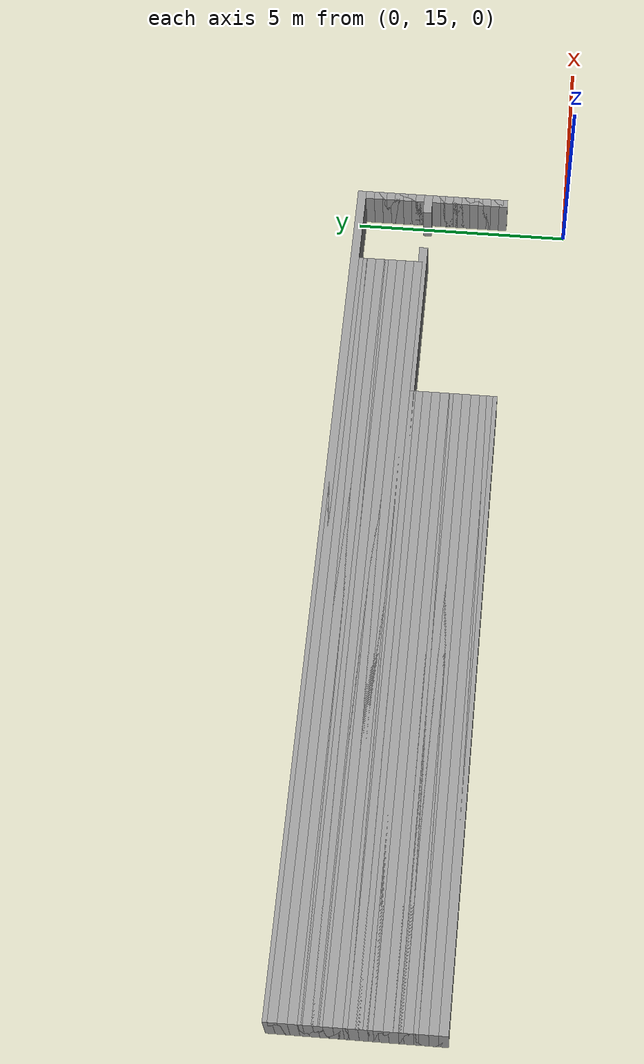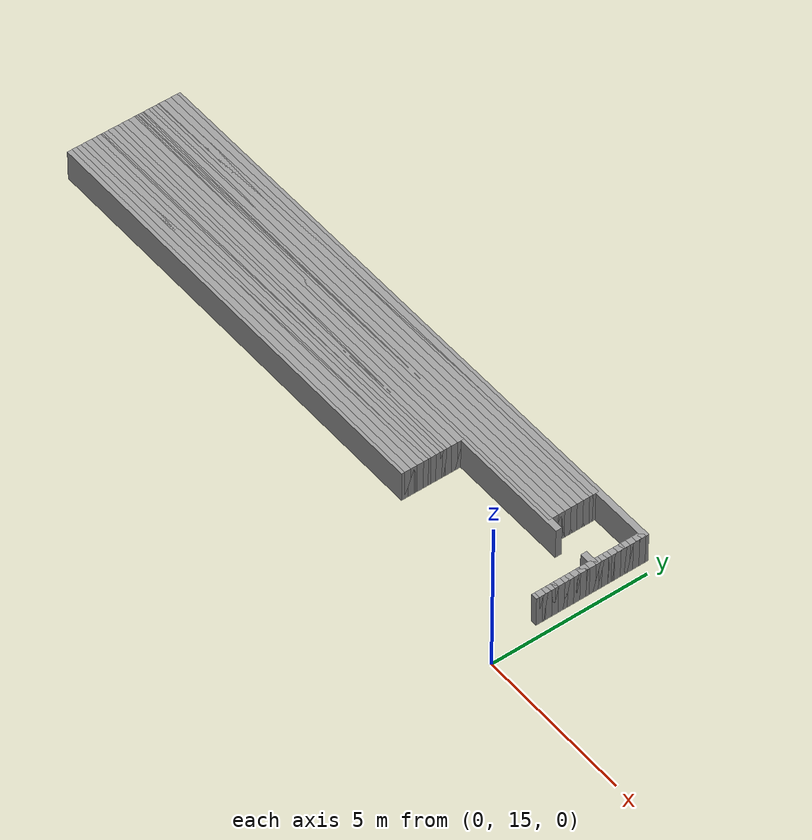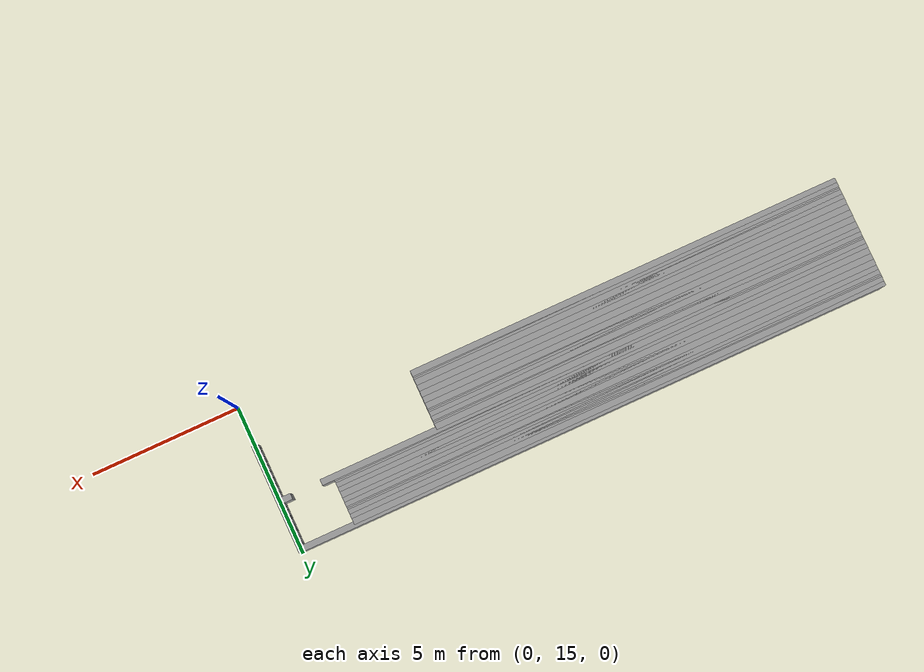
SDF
<sdf version="1.6">
 <world name="GridMap">
  <model name="GridMap">
   <link name="Wall_(126.5,164.0)">
    <collision name="Wall_(126.5,164.0)_Collision">
     <geometry><box><size>14.5 0.2 1.0</size></box></geometry>
     <pose>-12.65 16.4 0.5 0 -0 0</pose>
    </collision>
    <visual name="Wall_(126.5,164.0)_Visual">
     <geometry><box><size>14.5 0.2 1.0</size></box></geometry>
     <pose>-12.65 16.4 0.5 0 -0 0</pose>
     <material>
      <script><uri>file://media/materials/scripts/gazebo.material</uri><name>Gazebo/Grey</name></script>
      <ambient>1 1 1 1</ambient>
     </material>
     <meta><layer>0</layer></meta>
    </visual>
    <pose>0 0 0.5 0 -0 0</pose>
   </link>
   <link name="Wall_(1.0,165.0)">
    <collision name="Wall_(1.0,165.0)_Collision">
     <geometry><box><size>0.2 0.2 1.0</size></box></geometry>
     <pose>-0.1 16.5 0.5 0 -0 0</pose>
    </collision>
    <visual name="Wall_(1.0,165.0)_Visual">
     <geometry><box><size>0.2 0.2 1.0</size></box></geometry>
     <pose>-0.1 16.5 0.5 0 -0 0</pose>
     <material>
      <script><uri>file://media/materials/scripts/gazebo.material</uri><name>Gazebo/Grey</name></script>
      <ambient>1 1 1 1</ambient>
     </material>
     <meta><layer>0</layer></meta>
    </visual>
    <pose>0 0 0.5 0 -0 0</pose>
   </link>
   <link name="Wall_(126.5,165.0)">
    <collision name="Wall_(126.5,165.0)_Collision">
     <geometry><box><size>14.5 0.2 1.0</size></box></geometry>
     <pose>-12.65 16.5 0.5 0 -0 0</pose>
    </collision>
    <visual name="Wall_(126.5,165.0)_Visual">
     <geometry><box><size>14.5 0.2 1.0</size></box></geometry>
     <pose>-12.65 16.5 0.5 0 -0 0</pose>
     <material>
      <script><uri>file://media/materials/scripts/gazebo.material</uri><name>Gazebo/Grey</name></script>
      <ambient>1 1 1 1</ambient>
     </material>
     <meta><layer>0</layer></meta>
    </visual>
    <pose>0 0 0.5 0 -0 0</pose>
   </link>
   <link name="Wall_(1.0,166.0)">
    <collision name="Wall_(1.0,166.0)_Collision">
     <geometry><box><size>0.2 0.2 1.0</size></box></geometry>
     <pose>-0.1 16.6 0.5 0 -0 0</pose>
    </collision>
    <visual name="Wall_(1.0,166.0)_Visual">
     <geometry><box><size>0.2 0.2 1.0</size></box></geometry>
     <pose>-0.1 16.6 0.5 0 -0 0</pose>
     <material>
      <script><uri>file://media/materials/scripts/gazebo.material</uri><name>Gazebo/Grey</name></script>
      <ambient>1 1 1 1</ambient>
     </material>
     <meta><layer>0</layer></meta>
    </visual>
    <pose>0 0 0.5 0 -0 0</pose>
   </link>
   <link name="Wall_(126.5,166.0)">
    <collision name="Wall_(126.5,166.0)_Collision">
     <geometry><box><size>14.5 0.2 1.0</size></box></geometry>
     <pose>-12.65 16.6 0.5 0 -0 0</pose>
    </collision>
    <visual name="Wall_(126.5,166.0)_Visual">
     <geometry><box><size>14.5 0.2 1.0</size></box></geometry>
     <pose>-12.65 16.6 0.5 0 -0 0</pose>
     <material>
      <script><uri>file://media/materials/scripts/gazebo.material</uri><name>Gazebo/Grey</name></script>
      <ambient>1 1 1 1</ambient>
     </material>
     <meta><layer>0</layer></meta>
    </visual>
    <pose>0 0 0.5 0 -0 0</pose>
   </link>
   <link name="Wall_(1.0,167.0)">
    <collision name="Wall_(1.0,167.0)_Collision">
     <geometry><box><size>0.2 0.2 1.0</size></box></geometry>
     <pose>-0.1 16.7 0.5 0 -0 0</pose>
    </collision>
    <visual name="Wall_(1.0,167.0)_Visual">
     <geometry><box><size>0.2 0.2 1.0</size></box></geometry>
     <pose>-0.1 16.7 0.5 0 -0 0</pose>
     <material>
      <script><uri>file://media/materials/scripts/gazebo.material</uri><name>Gazebo/Grey</name></script>
      <ambient>1 1 1 1</ambient>
     </material>
     <meta><layer>0</layer></meta>
    </visual>
    <pose>0 0 0.5 0 -0 0</pose>
   </link>
   <link name="Wall_(126.5,167.0)">
    <collision name="Wall_(126.5,167.0)_Collision">
     <geometry><box><size>14.5 0.2 1.0</size></box></geometry>
     <pose>-12.65 16.7 0.5 0 -0 0</pose>
    </collision>
    <visual name="Wall_(126.5,167.0)_Visual">
     <geometry><box><size>14.5 0.2 1.0</size></box></geometry>
     <pose>-12.65 16.7 0.5 0 -0 0</pose>
     <material>
      <script><uri>file://media/materials/scripts/gazebo.material</uri><name>Gazebo/Grey</name></script>
      <ambient>1 1 1 1</ambient>
     </material>
     <meta><layer>0</layer></meta>
    </visual>
    <pose>0 0 0.5 0 -0 0</pose>
   </link>
   <link name="Wall_(1.0,168.0)">
    <collision name="Wall_(1.0,168.0)_Collision">
     <geometry><box><size>0.2 0.2 1.0</size></box></geometry>
     <pose>-0.1 16.8 0.5 0 -0 0</pose>
    </collision>
    <visual name="Wall_(1.0,168.0)_Visual">
     <geometry><box><size>0.2 0.2 1.0</size></box></geometry>
     <pose>-0.1 16.8 0.5 0 -0 0</pose>
     <material>
      <script><uri>file://media/materials/scripts/gazebo.material</uri><name>Gazebo/Grey</name></script>
      <ambient>1 1 1 1</ambient>
     </material>
     <meta><layer>0</layer></meta>
    </visual>
    <pose>0 0 0.5 0 -0 0</pose>
   </link>
   <link name="Wall_(126.5,168.0)">
    <collision name="Wall_(126.5,168.0)_Collision">
     <geometry><box><size>14.5 0.2 1.0</size></box></geometry>
     <pose>-12.65 16.8 0.5 0 -0 0</pose>
    </collision>
    <visual name="Wall_(126.5,168.0)_Visual">
     <geometry><box><size>14.5 0.2 1.0</size></box></geometry>
     <pose>-12.65 16.8 0.5 0 -0 0</pose>
     <material>
      <script><uri>file://media/materials/scripts/gazebo.material</uri><name>Gazebo/Grey</name></script>
      <ambient>1 1 1 1</ambient>
     </material>
     <meta><layer>0</layer></meta>
    </visual>
    <pose>0 0 0.5 0 -0 0</pose>
   </link>
   <link name="Wall_(1.0,169.0)">
    <collision name="Wall_(1.0,169.0)_Collision">
     <geometry><box><size>0.2 0.2 1.0</size></box></geometry>
     <pose>-0.1 16.9 0.5 0 -0 0</pose>
    </collision>
    <visual name="Wall_(1.0,169.0)_Visual">
     <geometry><box><size>0.2 0.2 1.0</size></box></geometry>
     <pose>-0.1 16.9 0.5 0 -0 0</pose>
     <material>
      <script><uri>file://media/materials/scripts/gazebo.material</uri><name>Gazebo/Grey</name></script>
      <ambient>1 1 1 1</ambient>
     </material>
     <meta><layer>0</layer></meta>
    </visual>
    <pose>0 0 0.5 0 -0 0</pose>
   </link>
   <link name="Wall_(126.5,169.0)">
    <collision name="Wall_(126.5,169.0)_Collision">
     <geometry><box><size>14.5 0.2 1.0</size></box></geometry>
     <pose>-12.65 16.9 0.5 0 -0 0</pose>
    </collision>
    <visual name="Wall_(126.5,169.0)_Visual">
     <geometry><box><size>14.5 0.2 1.0</size></box></geometry>
     <pose>-12.65 16.9 0.5 0 -0 0</pose>
     <material>
      <script><uri>file://media/materials/scripts/gazebo.material</uri><name>Gazebo/Grey</name></script>
      <ambient>1 1 1 1</ambient>
     </material>
     <meta><layer>0</layer></meta>
    </visual>
    <pose>0 0 0.5 0 -0 0</pose>
   </link>
   <link name="Wall_(1.0,170.0)">
    <collision name="Wall_(1.0,170.0)_Collision">
     <geometry><box><size>0.2 0.2 1.0</size></box></geometry>
     <pose>-0.1 17.0 0.5 0 -0 0</pose>
    </collision>
    <visual name="Wall_(1.0,170.0)_Visual">
     <geometry><box><size>0.2 0.2 1.0</size></box></geometry>
     <pose>-0.1 17.0 0.5 0 -0 0</pose>
     <material>
      <script><uri>file://media/materials/scripts/gazebo.material</uri><name>Gazebo/Grey</name></script>
      <ambient>1 1 1 1</ambient>
     </material>
     <meta><layer>0</layer></meta>
    </visual>
    <pose>0 0 0.5 0 -0 0</pose>
   </link>
   <link name="Wall_(126.5,170.0)">
    <collision name="Wall_(126.5,170.0)_Collision">
     <geometry><box><size>14.5 0.2 1.0</size></box></geometry>
     <pose>-12.65 17.0 0.5 0 -0 0</pose>
    </collision>
    <visual name="Wall_(126.5,170.0)_Visual">
     <geometry><box><size>14.5 0.2 1.0</size></box></geometry>
     <pose>-12.65 17.0 0.5 0 -0 0</pose>
     <material>
      <script><uri>file://media/materials/scripts/gazebo.material</uri><name>Gazebo/Grey</name></script>
      <ambient>1 1 1 1</ambient>
     </material>
     <meta><layer>0</layer></meta>
    </visual>
    <pose>0 0 0.5 0 -0 0</pose>
   </link>
   <link name="Wall_(1.0,171.0)">
    <collision name="Wall_(1.0,171.0)_Collision">
     <geometry><box><size>0.2 0.2 1.0</size></box></geometry>
     <pose>-0.1 17.1 0.5 0 -0 0</pose>
    </collision>
    <visual name="Wall_(1.0,171.0)_Visual">
     <geometry><box><size>0.2 0.2 1.0</size></box></geometry>
     <pose>-0.1 17.1 0.5 0 -0 0</pose>
     <material>
      <script><uri>file://media/materials/scripts/gazebo.material</uri><name>Gazebo/Grey</name></script>
      <ambient>1 1 1 1</ambient>
     </material>
     <meta><layer>0</layer></meta>
    </visual>
    <pose>0 0 0.5 0 -0 0</pose>
   </link>
   <link name="Wall_(126.5,171.0)">
    <collision name="Wall_(126.5,171.0)_Collision">
     <geometry><box><size>14.5 0.2 1.0</size></box></geometry>
     <pose>-12.65 17.1 0.5 0 -0 0</pose>
    </collision>
    <visual name="Wall_(126.5,171.0)_Visual">
     <geometry><box><size>14.5 0.2 1.0</size></box></geometry>
     <pose>-12.65 17.1 0.5 0 -0 0</pose>
     <material>
      <script><uri>file://media/materials/scripts/gazebo.material</uri><name>Gazebo/Grey</name></script>
      <ambient>1 1 1 1</ambient>
     </material>
     <meta><layer>0</layer></meta>
    </visual>
    <pose>0 0 0.5 0 -0 0</pose>
   </link>
   <link name="Wall_(1.0,172.0)">
    <collision name="Wall_(1.0,172.0)_Collision">
     <geometry><box><size>0.2 0.2 1.0</size></box></geometry>
     <pose>-0.1 17.2 0.5 0 -0 0</pose>
    </collision>
    <visual name="Wall_(1.0,172.0)_Visual">
     <geometry><box><size>0.2 0.2 1.0</size></box></geometry>
     <pose>-0.1 17.2 0.5 0 -0 0</pose>
     <material>
      <script><uri>file://media/materials/scripts/gazebo.material</uri><name>Gazebo/Grey</name></script>
      <ambient>1 1 1 1</ambient>
     </material>
     <meta><layer>0</layer></meta>
    </visual>
    <pose>0 0 0.5 0 -0 0</pose>
   </link>
   <link name="Wall_(126.5,172.0)">
    <collision name="Wall_(126.5,172.0)_Collision">
     <geometry><box><size>14.5 0.2 1.0</size></box></geometry>
     <pose>-12.65 17.2 0.5 0 -0 0</pose>
    </collision>
    <visual name="Wall_(126.5,172.0)_Visual">
     <geometry><box><size>14.5 0.2 1.0</size></box></geometry>
     <pose>-12.65 17.2 0.5 0 -0 0</pose>
     <material>
      <script><uri>file://media/materials/scripts/gazebo.material</uri><name>Gazebo/Grey</name></script>
      <ambient>1 1 1 1</ambient>
     </material>
     <meta><layer>0</layer></meta>
    </visual>
    <pose>0 0 0.5 0 -0 0</pose>
   </link>
   <link name="Wall_(1.0,173.0)">
    <collision name="Wall_(1.0,173.0)_Collision">
     <geometry><box><size>0.2 0.2 1.0</size></box></geometry>
     <pose>-0.1 17.3 0.5 0 -0 0</pose>
    </collision>
    <visual name="Wall_(1.0,173.0)_Visual">
     <geometry><box><size>0.2 0.2 1.0</size></box></geometry>
     <pose>-0.1 17.3 0.5 0 -0 0</pose>
     <material>
      <script><uri>file://media/materials/scripts/gazebo.material</uri><name>Gazebo/Grey</name></script>
      <ambient>1 1 1 1</ambient>
     </material>
     <meta><layer>0</layer></meta>
    </visual>
    <pose>0 0 0.5 0 -0 0</pose>
   </link>
   <link name="Wall_(126.5,173.0)">
    <collision name="Wall_(126.5,173.0)_Collision">
     <geometry><box><size>14.5 0.2 1.0</size></box></geometry>
     <pose>-12.65 17.3 0.5 0 -0 0</pose>
    </collision>
    <visual name="Wall_(126.5,173.0)_Visual">
     <geometry><box><size>14.5 0.2 1.0</size></box></geometry>
     <pose>-12.65 17.3 0.5 0 -0 0</pose>
     <material>
      <script><uri>file://media/materials/scripts/gazebo.material</uri><name>Gazebo/Grey</name></script>
      <ambient>1 1 1 1</ambient>
     </material>
     <meta><layer>0</layer></meta>
    </visual>
    <pose>0 0 0.5 0 -0 0</pose>
   </link>
   <link name="Wall_(1.0,174.0)">
    <collision name="Wall_(1.0,174.0)_Collision">
     <geometry><box><size>0.2 0.2 1.0</size></box></geometry>
     <pose>-0.1 17.4 0.5 0 -0 0</pose>
    </collision>
    <visual name="Wall_(1.0,174.0)_Visual">
     <geometry><box><size>0.2 0.2 1.0</size></box></geometry>
     <pose>-0.1 17.4 0.5 0 -0 0</pose>
     <material>
      <script><uri>file://media/materials/scripts/gazebo.material</uri><name>Gazebo/Grey</name></script>
      <ambient>1 1 1 1</ambient>
     </material>
     <meta><layer>0</layer></meta>
    </visual>
    <pose>0 0 0.5 0 -0 0</pose>
   </link>
   <link name="Wall_(126.5,174.0)">
    <collision name="Wall_(126.5,174.0)_Collision">
     <geometry><box><size>14.5 0.2 1.0</size></box></geometry>
     <pose>-12.65 17.4 0.5 0 -0 0</pose>
    </collision>
    <visual name="Wall_(126.5,174.0)_Visual">
     <geometry><box><size>14.5 0.2 1.0</size></box></geometry>
     <pose>-12.65 17.4 0.5 0 -0 0</pose>
     <material>
      <script><uri>file://media/materials/scripts/gazebo.material</uri><name>Gazebo/Grey</name></script>
      <ambient>1 1 1 1</ambient>
     </material>
     <meta><layer>0</layer></meta>
    </visual>
    <pose>0 0 0.5 0 -0 0</pose>
   </link>
   <link name="Wall_(1.0,175.0)">
    <collision name="Wall_(1.0,175.0)_Collision">
     <geometry><box><size>0.2 0.2 1.0</size></box></geometry>
     <pose>-0.1 17.5 0.5 0 -0 0</pose>
    </collision>
    <visual name="Wall_(1.0,175.0)_Visual">
     <geometry><box><size>0.2 0.2 1.0</size></box></geometry>
     <pose>-0.1 17.5 0.5 0 -0 0</pose>
     <material>
      <script><uri>file://media/materials/scripts/gazebo.material</uri><name>Gazebo/Grey</name></script>
      <ambient>1 1 1 1</ambient>
     </material>
     <meta><layer>0</layer></meta>
    </visual>
    <pose>0 0 0.5 0 -0 0</pose>
   </link>
   <link name="Wall_(126.5,175.0)">
    <collision name="Wall_(126.5,175.0)_Collision">
     <geometry><box><size>14.5 0.2 1.0</size></box></geometry>
     <pose>-12.65 17.5 0.5 0 -0 0</pose>
    </collision>
    <visual name="Wall_(126.5,175.0)_Visual">
     <geometry><box><size>14.5 0.2 1.0</size></box></geometry>
     <pose>-12.65 17.5 0.5 0 -0 0</pose>
     <material>
      <script><uri>file://media/materials/scripts/gazebo.material</uri><name>Gazebo/Grey</name></script>
      <ambient>1 1 1 1</ambient>
     </material>
     <meta><layer>0</layer></meta>
    </visual>
    <pose>0 0 0.5 0 -0 0</pose>
   </link>
   <link name="Wall_(1.0,176.0)">
    <collision name="Wall_(1.0,176.0)_Collision">
     <geometry><box><size>0.2 0.2 1.0</size></box></geometry>
     <pose>-0.1 17.6 0.5 0 -0 0</pose>
    </collision>
    <visual name="Wall_(1.0,176.0)_Visual">
     <geometry><box><size>0.2 0.2 1.0</size></box></geometry>
     <pose>-0.1 17.6 0.5 0 -0 0</pose>
     <material>
      <script><uri>file://media/materials/scripts/gazebo.material</uri><name>Gazebo/Grey</name></script>
      <ambient>1 1 1 1</ambient>
     </material>
     <meta><layer>0</layer></meta>
    </visual>
    <pose>0 0 0.5 0 -0 0</pose>
   </link>
   <link name="Wall_(126.5,176.0)">
    <collision name="Wall_(126.5,176.0)_Collision">
     <geometry><box><size>14.5 0.2 1.0</size></box></geometry>
     <pose>-12.65 17.6 0.5 0 -0 0</pose>
    </collision>
    <visual name="Wall_(126.5,176.0)_Visual">
     <geometry><box><size>14.5 0.2 1.0</size></box></geometry>
     <pose>-12.65 17.6 0.5 0 -0 0</pose>
     <material>
      <script><uri>file://media/materials/scripts/gazebo.material</uri><name>Gazebo/Grey</name></script>
      <ambient>1 1 1 1</ambient>
     </material>
     <meta><layer>0</layer></meta>
    </visual>
    <pose>0 0 0.5 0 -0 0</pose>
   </link>
   <link name="Wall_(1.0,177.0)">
    <collision name="Wall_(1.0,177.0)_Collision">
     <geometry><box><size>0.2 0.2 1.0</size></box></geometry>
     <pose>-0.1 17.7 0.5 0 -0 0</pose>
    </collision>
    <visual name="Wall_(1.0,177.0)_Visual">
     <geometry><box><size>0.2 0.2 1.0</size></box></geometry>
     <pose>-0.1 17.7 0.5 0 -0 0</pose>
     <material>
      <script><uri>file://media/materials/scripts/gazebo.material</uri><name>Gazebo/Grey</name></script>
      <ambient>1 1 1 1</ambient>
     </material>
     <meta><layer>0</layer></meta>
    </visual>
    <pose>0 0 0.5 0 -0 0</pose>
   </link>
   <link name="Wall_(126.5,177.0)">
    <collision name="Wall_(126.5,177.0)_Collision">
     <geometry><box><size>14.5 0.2 1.0</size></box></geometry>
     <pose>-12.65 17.7 0.5 0 -0 0</pose>
    </collision>
    <visual name="Wall_(126.5,177.0)_Visual">
     <geometry><box><size>14.5 0.2 1.0</size></box></geometry>
     <pose>-12.65 17.7 0.5 0 -0 0</pose>
     <material>
      <script><uri>file://media/materials/scripts/gazebo.material</uri><name>Gazebo/Grey</name></script>
      <ambient>1 1 1 1</ambient>
     </material>
     <meta><layer>0</layer></meta>
    </visual>
    <pose>0 0 0.5 0 -0 0</pose>
   </link>
   <link name="Wall_(1.0,178.0)">
    <collision name="Wall_(1.0,178.0)_Collision">
     <geometry><box><size>0.2 0.2 1.0</size></box></geometry>
     <pose>-0.1 17.8 0.5 0 -0 0</pose>
    </collision>
    <visual name="Wall_(1.0,178.0)_Visual">
     <geometry><box><size>0.2 0.2 1.0</size></box></geometry>
     <pose>-0.1 17.8 0.5 0 -0 0</pose>
     <material>
      <script><uri>file://media/materials/scripts/gazebo.material</uri><name>Gazebo/Grey</name></script>
      <ambient>1 1 1 1</ambient>
     </material>
     <meta><layer>0</layer></meta>
    </visual>
    <pose>0 0 0.5 0 -0 0</pose>
   </link>
   <link name="Wall_(126.5,178.0)">
    <collision name="Wall_(126.5,178.0)_Collision">
     <geometry><box><size>14.5 0.2 1.0</size></box></geometry>
     <pose>-12.65 17.8 0.5 0 -0 0</pose>
    </collision>
    <visual name="Wall_(126.5,178.0)_Visual">
     <geometry><box><size>14.5 0.2 1.0</size></box></geometry>
     <pose>-12.65 17.8 0.5 0 -0 0</pose>
     <material>
      <script><uri>file://media/materials/scripts/gazebo.material</uri><name>Gazebo/Grey</name></script>
      <ambient>1 1 1 1</ambient>
     </material>
     <meta><layer>0</layer></meta>
    </visual>
    <pose>0 0 0.5 0 -0 0</pose>
   </link>
   <link name="Wall_(1.0,179.0)">
    <collision name="Wall_(1.0,179.0)_Collision">
     <geometry><box><size>0.2 0.2 1.0</size></box></geometry>
     <pose>-0.1 17.9 0.5 0 -0 0</pose>
    </collision>
    <visual name="Wall_(1.0,179.0)_Visual">
     <geometry><box><size>0.2 0.2 1.0</size></box></geometry>
     <pose>-0.1 17.9 0.5 0 -0 0</pose>
     <material>
      <script><uri>file://media/materials/scripts/gazebo.material</uri><name>Gazebo/Grey</name></script>
      <ambient>1 1 1 1</ambient>
     </material>
     <meta><layer>0</layer></meta>
    </visual>
    <pose>0 0 0.5 0 -0 0</pose>
   </link>
   <link name="Wall_(126.5,179.0)">
    <collision name="Wall_(126.5,179.0)_Collision">
     <geometry><box><size>14.5 0.2 1.0</size></box></geometry>
     <pose>-12.65 17.9 0.5 0 -0 0</pose>
    </collision>
    <visual name="Wall_(126.5,179.0)_Visual">
     <geometry><box><size>14.5 0.2 1.0</size></box></geometry>
     <pose>-12.65 17.9 0.5 0 -0 0</pose>
     <material>
      <script><uri>file://media/materials/scripts/gazebo.material</uri><name>Gazebo/Grey</name></script>
      <ambient>1 1 1 1</ambient>
     </material>
     <meta><layer>0</layer></meta>
    </visual>
    <pose>0 0 0.5 0 -0 0</pose>
   </link>
   <link name="Wall_(1.0,180.0)">
    <collision name="Wall_(1.0,180.0)_Collision">
     <geometry><box><size>0.2 0.2 1.0</size></box></geometry>
     <pose>-0.1 18.0 0.5 0 -0 0</pose>
    </collision>
    <visual name="Wall_(1.0,180.0)_Visual">
     <geometry><box><size>0.2 0.2 1.0</size></box></geometry>
     <pose>-0.1 18.0 0.5 0 -0 0</pose>
     <material>
      <script><uri>file://media/materials/scripts/gazebo.material</uri><name>Gazebo/Grey</name></script>
      <ambient>1 1 1 1</ambient>
     </material>
     <meta><layer>0</layer></meta>
    </visual>
    <pose>0 0 0.5 0 -0 0</pose>
   </link>
   <link name="Wall_(126.5,180.0)">
    <collision name="Wall_(126.5,180.0)_Collision">
     <geometry><box><size>14.5 0.2 1.0</size></box></geometry>
     <pose>-12.65 18.0 0.5 0 -0 0</pose>
    </collision>
    <visual name="Wall_(126.5,180.0)_Visual">
     <geometry><box><size>14.5 0.2 1.0</size></box></geometry>
     <pose>-12.65 18.0 0.5 0 -0 0</pose>
     <material>
      <script><uri>file://media/materials/scripts/gazebo.material</uri><name>Gazebo/Grey</name></script>
      <ambient>1 1 1 1</ambient>
     </material>
     <meta><layer>0</layer></meta>
    </visual>
    <pose>0 0 0.5 0 -0 0</pose>
   </link>
   <link name="Wall_(1.0,181.0)">
    <collision name="Wall_(1.0,181.0)_Collision">
     <geometry><box><size>0.2 0.2 1.0</size></box></geometry>
     <pose>-0.1 18.1 0.5 0 -0 0</pose>
    </collision>
    <visual name="Wall_(1.0,181.0)_Visual">
     <geometry><box><size>0.2 0.2 1.0</size></box></geometry>
     <pose>-0.1 18.1 0.5 0 -0 0</pose>
     <material>
      <script><uri>file://media/materials/scripts/gazebo.material</uri><name>Gazebo/Grey</name></script>
      <ambient>1 1 1 1</ambient>
     </material>
     <meta><layer>0</layer></meta>
    </visual>
    <pose>0 0 0.5 0 -0 0</pose>
   </link>
   <link name="Wall_(126.5,181.0)">
    <collision name="Wall_(126.5,181.0)_Collision">
     <geometry><box><size>14.5 0.2 1.0</size></box></geometry>
     <pose>-12.65 18.1 0.5 0 -0 0</pose>
    </collision>
    <visual name="Wall_(126.5,181.0)_Visual">
     <geometry><box><size>14.5 0.2 1.0</size></box></geometry>
     <pose>-12.65 18.1 0.5 0 -0 0</pose>
     <material>
      <script><uri>file://media/materials/scripts/gazebo.material</uri><name>Gazebo/Grey</name></script>
      <ambient>1 1 1 1</ambient>
     </material>
     <meta><layer>0</layer></meta>
    </visual>
    <pose>0 0 0.5 0 -0 0</pose>
   </link>
   <link name="Wall_(1.0,182.0)">
    <collision name="Wall_(1.0,182.0)_Collision">
     <geometry><box><size>0.2 0.2 1.0</size></box></geometry>
     <pose>-0.1 18.2 0.5 0 -0 0</pose>
    </collision>
    <visual name="Wall_(1.0,182.0)_Visual">
     <geometry><box><size>0.2 0.2 1.0</size></box></geometry>
     <pose>-0.1 18.2 0.5 0 -0 0</pose>
     <material>
      <script><uri>file://media/materials/scripts/gazebo.material</uri><name>Gazebo/Grey</name></script>
      <ambient>1 1 1 1</ambient>
     </material>
     <meta><layer>0</layer></meta>
    </visual>
    <pose>0 0 0.5 0 -0 0</pose>
   </link>
   <link name="Wall_(126.5,182.0)">
    <collision name="Wall_(126.5,182.0)_Collision">
     <geometry><box><size>14.5 0.2 1.0</size></box></geometry>
     <pose>-12.65 18.2 0.5 0 -0 0</pose>
    </collision>
    <visual name="Wall_(126.5,182.0)_Visual">
     <geometry><box><size>14.5 0.2 1.0</size></box></geometry>
     <pose>-12.65 18.2 0.5 0 -0 0</pose>
     <material>
      <script><uri>file://media/materials/scripts/gazebo.material</uri><name>Gazebo/Grey</name></script>
      <ambient>1 1 1 1</ambient>
     </material>
     <meta><layer>0</layer></meta>
    </visual>
    <pose>0 0 0.5 0 -0 0</pose>
   </link>
   <link name="Wall_(2.5,183.0)">
    <collision name="Wall_(2.5,183.0)_Collision">
     <geometry><box><size>0.5 0.2 1.0</size></box></geometry>
     <pose>-0.25 18.3 0.5 0 -0 0</pose>
    </collision>
    <visual name="Wall_(2.5,183.0)_Visual">
     <geometry><box><size>0.5 0.2 1.0</size></box></geometry>
     <pose>-0.25 18.3 0.5 0 -0 0</pose>
     <material>
      <script><uri>file://media/materials/scripts/gazebo.material</uri><name>Gazebo/Grey</name></script>
      <ambient>1 1 1 1</ambient>
     </material>
     <meta><layer>0</layer></meta>
    </visual>
    <pose>0 0 0.5 0 -0 0</pose>
   </link>
   <link name="Wall_(107.0,183.0)">
    <collision name="Wall_(107.0,183.0)_Collision">
     <geometry><box><size>18.4 0.2 1.0</size></box></geometry>
     <pose>-10.7 18.3 0.5 0 -0 0</pose>
    </collision>
    <visual name="Wall_(107.0,183.0)_Visual">
     <geometry><box><size>18.4 0.2 1.0</size></box></geometry>
     <pose>-10.7 18.3 0.5 0 -0 0</pose>
     <material>
      <script><uri>file://media/materials/scripts/gazebo.material</uri><name>Gazebo/Grey</name></script>
      <ambient>1 1 1 1</ambient>
     </material>
     <meta><layer>0</layer></meta>
    </visual>
    <pose>0 0 0.5 0 -0 0</pose>
   </link>
   <link name="Wall_(1.0,184.0)">
    <collision name="Wall_(1.0,184.0)_Collision">
     <geometry><box><size>0.2 0.2 1.0</size></box></geometry>
     <pose>-0.1 18.4 0.5 0 -0 0</pose>
    </collision>
    <visual name="Wall_(1.0,184.0)_Visual">
     <geometry><box><size>0.2 0.2 1.0</size></box></geometry>
     <pose>-0.1 18.4 0.5 0 -0 0</pose>
     <material>
      <script><uri>file://media/materials/scripts/gazebo.material</uri><name>Gazebo/Grey</name></script>
      <ambient>1 1 1 1</ambient>
     </material>
     <meta><layer>0</layer></meta>
    </visual>
    <pose>0 0 0.5 0 -0 0</pose>
   </link>
   <link name="Wall_(109.0,184.0)">
    <collision name="Wall_(109.0,184.0)_Collision">
     <geometry><box><size>18.0 0.2 1.0</size></box></geometry>
     <pose>-10.9 18.4 0.5 0 -0 0</pose>
    </collision>
    <visual name="Wall_(109.0,184.0)_Visual">
     <geometry><box><size>18.0 0.2 1.0</size></box></geometry>
     <pose>-10.9 18.4 0.5 0 -0 0</pose>
     <material>
      <script><uri>file://media/materials/scripts/gazebo.material</uri><name>Gazebo/Grey</name></script>
      <ambient>1 1 1 1</ambient>
     </material>
     <meta><layer>0</layer></meta>
    </visual>
    <pose>0 0 0.5 0 -0 0</pose>
   </link>
   <link name="Wall_(1.0,185.0)">
    <collision name="Wall_(1.0,185.0)_Collision">
     <geometry><box><size>0.2 0.2 1.0</size></box></geometry>
     <pose>-0.1 18.5 0.5 0 -0 0</pose>
    </collision>
    <visual name="Wall_(1.0,185.0)_Visual">
     <geometry><box><size>0.2 0.2 1.0</size></box></geometry>
     <pose>-0.1 18.5 0.5 0 -0 0</pose>
     <material>
      <script><uri>file://media/materials/scripts/gazebo.material</uri><name>Gazebo/Grey</name></script>
      <ambient>1 1 1 1</ambient>
     </material>
     <meta><layer>0</layer></meta>
    </visual>
    <pose>0 0 0.5 0 -0 0</pose>
   </link>
   <link name="Wall_(109.0,185.0)">
    <collision name="Wall_(109.0,185.0)_Collision">
     <geometry><box><size>18.0 0.2 1.0</size></box></geometry>
     <pose>-10.9 18.5 0.5 0 -0 0</pose>
    </collision>
    <visual name="Wall_(109.0,185.0)_Visual">
     <geometry><box><size>18.0 0.2 1.0</size></box></geometry>
     <pose>-10.9 18.5 0.5 0 -0 0</pose>
     <material>
      <script><uri>file://media/materials/scripts/gazebo.material</uri><name>Gazebo/Grey</name></script>
      <ambient>1 1 1 1</ambient>
     </material>
     <meta><layer>0</layer></meta>
    </visual>
    <pose>0 0 0.5 0 -0 0</pose>
   </link>
   <link name="Wall_(1.0,186.0)">
    <collision name="Wall_(1.0,186.0)_Collision">
     <geometry><box><size>0.2 0.2 1.0</size></box></geometry>
     <pose>-0.1 18.6 0.5 0 -0 0</pose>
    </collision>
    <visual name="Wall_(1.0,186.0)_Visual">
     <geometry><box><size>0.2 0.2 1.0</size></box></geometry>
     <pose>-0.1 18.6 0.5 0 -0 0</pose>
     <material>
      <script><uri>file://media/materials/scripts/gazebo.material</uri><name>Gazebo/Grey</name></script>
      <ambient>1 1 1 1</ambient>
     </material>
     <meta><layer>0</layer></meta>
    </visual>
    <pose>0 0 0.5 0 -0 0</pose>
   </link>
   <link name="Wall_(109.0,186.0)">
    <collision name="Wall_(109.0,186.0)_Collision">
     <geometry><box><size>18.0 0.2 1.0</size></box></geometry>
     <pose>-10.9 18.6 0.5 0 -0 0</pose>
    </collision>
    <visual name="Wall_(109.0,186.0)_Visual">
     <geometry><box><size>18.0 0.2 1.0</size></box></geometry>
     <pose>-10.9 18.6 0.5 0 -0 0</pose>
     <material>
      <script><uri>file://media/materials/scripts/gazebo.material</uri><name>Gazebo/Grey</name></script>
      <ambient>1 1 1 1</ambient>
     </material>
     <meta><layer>0</layer></meta>
    </visual>
    <pose>0 0 0.5 0 -0 0</pose>
   </link>
   <link name="Wall_(1.0,187.0)">
    <collision name="Wall_(1.0,187.0)_Collision">
     <geometry><box><size>0.2 0.2 1.0</size></box></geometry>
     <pose>-0.1 18.7 0.5 0 -0 0</pose>
    </collision>
    <visual name="Wall_(1.0,187.0)_Visual">
     <geometry><box><size>0.2 0.2 1.0</size></box></geometry>
     <pose>-0.1 18.7 0.5 0 -0 0</pose>
     <material>
      <script><uri>file://media/materials/scripts/gazebo.material</uri><name>Gazebo/Grey</name></script>
      <ambient>1 1 1 1</ambient>
     </material>
     <meta><layer>0</layer></meta>
    </visual>
    <pose>0 0 0.5 0 -0 0</pose>
   </link>
   <link name="Wall_(109.0,187.0)">
    <collision name="Wall_(109.0,187.0)_Collision">
     <geometry><box><size>18.0 0.2 1.0</size></box></geometry>
     <pose>-10.9 18.7 0.5 0 -0 0</pose>
    </collision>
    <visual name="Wall_(109.0,187.0)_Visual">
     <geometry><box><size>18.0 0.2 1.0</size></box></geometry>
     <pose>-10.9 18.7 0.5 0 -0 0</pose>
     <material>
      <script><uri>file://media/materials/scripts/gazebo.material</uri><name>Gazebo/Grey</name></script>
      <ambient>1 1 1 1</ambient>
     </material>
     <meta><layer>0</layer></meta>
    </visual>
    <pose>0 0 0.5 0 -0 0</pose>
   </link>
   <link name="Wall_(1.0,188.0)">
    <collision name="Wall_(1.0,188.0)_Collision">
     <geometry><box><size>0.2 0.2 1.0</size></box></geometry>
     <pose>-0.1 18.8 0.5 0 -0 0</pose>
    </collision>
    <visual name="Wall_(1.0,188.0)_Visual">
     <geometry><box><size>0.2 0.2 1.0</size></box></geometry>
     <pose>-0.1 18.8 0.5 0 -0 0</pose>
     <material>
      <script><uri>file://media/materials/scripts/gazebo.material</uri><name>Gazebo/Grey</name></script>
      <ambient>1 1 1 1</ambient>
     </material>
     <meta><layer>0</layer></meta>
    </visual>
    <pose>0 0 0.5 0 -0 0</pose>
   </link>
   <link name="Wall_(109.0,188.0)">
    <collision name="Wall_(109.0,188.0)_Collision">
     <geometry><box><size>18.0 0.2 1.0</size></box></geometry>
     <pose>-10.9 18.8 0.5 0 -0 0</pose>
    </collision>
    <visual name="Wall_(109.0,188.0)_Visual">
     <geometry><box><size>18.0 0.2 1.0</size></box></geometry>
     <pose>-10.9 18.8 0.5 0 -0 0</pose>
     <material>
      <script><uri>file://media/materials/scripts/gazebo.material</uri><name>Gazebo/Grey</name></script>
      <ambient>1 1 1 1</ambient>
     </material>
     <meta><layer>0</layer></meta>
    </visual>
    <pose>0 0 0.5 0 -0 0</pose>
   </link>
   <link name="Wall_(1.0,189.0)">
    <collision name="Wall_(1.0,189.0)_Collision">
     <geometry><box><size>0.2 0.2 1.0</size></box></geometry>
     <pose>-0.1 18.9 0.5 0 -0 0</pose>
    </collision>
    <visual name="Wall_(1.0,189.0)_Visual">
     <geometry><box><size>0.2 0.2 1.0</size></box></geometry>
     <pose>-0.1 18.9 0.5 0 -0 0</pose>
     <material>
      <script><uri>file://media/materials/scripts/gazebo.material</uri><name>Gazebo/Grey</name></script>
      <ambient>1 1 1 1</ambient>
     </material>
     <meta><layer>0</layer></meta>
    </visual>
    <pose>0 0 0.5 0 -0 0</pose>
   </link>
   <link name="Wall_(109.0,189.0)">
    <collision name="Wall_(109.0,189.0)_Collision">
     <geometry><box><size>18.0 0.2 1.0</size></box></geometry>
     <pose>-10.9 18.9 0.5 0 -0 0</pose>
    </collision>
    <visual name="Wall_(109.0,189.0)_Visual">
     <geometry><box><size>18.0 0.2 1.0</size></box></geometry>
     <pose>-10.9 18.9 0.5 0 -0 0</pose>
     <material>
      <script><uri>file://media/materials/scripts/gazebo.material</uri><name>Gazebo/Grey</name></script>
      <ambient>1 1 1 1</ambient>
     </material>
     <meta><layer>0</layer></meta>
    </visual>
    <pose>0 0 0.5 0 -0 0</pose>
   </link>
   <link name="Wall_(1.0,190.0)">
    <collision name="Wall_(1.0,190.0)_Collision">
     <geometry><box><size>0.2 0.2 1.0</size></box></geometry>
     <pose>-0.1 19.0 0.5 0 -0 0</pose>
    </collision>
    <visual name="Wall_(1.0,190.0)_Visual">
     <geometry><box><size>0.2 0.2 1.0</size></box></geometry>
     <pose>-0.1 19.0 0.5 0 -0 0</pose>
     <material>
      <script><uri>file://media/materials/scripts/gazebo.material</uri><name>Gazebo/Grey</name></script>
      <ambient>1 1 1 1</ambient>
     </material>
     <meta><layer>0</layer></meta>
    </visual>
    <pose>0 0 0.5 0 -0 0</pose>
   </link>
   <link name="Wall_(109.0,190.0)">
    <collision name="Wall_(109.0,190.0)_Collision">
     <geometry><box><size>18.0 0.2 1.0</size></box></geometry>
     <pose>-10.9 19.0 0.5 0 -0 0</pose>
    </collision>
    <visual name="Wall_(109.0,190.0)_Visual">
     <geometry><box><size>18.0 0.2 1.0</size></box></geometry>
     <pose>-10.9 19.0 0.5 0 -0 0</pose>
     <material>
      <script><uri>file://media/materials/scripts/gazebo.material</uri><name>Gazebo/Grey</name></script>
      <ambient>1 1 1 1</ambient>
     </material>
     <meta><layer>0</layer></meta>
    </visual>
    <pose>0 0 0.5 0 -0 0</pose>
   </link>
   <link name="Wall_(1.0,191.0)">
    <collision name="Wall_(1.0,191.0)_Collision">
     <geometry><box><size>0.2 0.2 1.0</size></box></geometry>
     <pose>-0.1 19.1 0.5 0 -0 0</pose>
    </collision>
    <visual name="Wall_(1.0,191.0)_Visual">
     <geometry><box><size>0.2 0.2 1.0</size></box></geometry>
     <pose>-0.1 19.1 0.5 0 -0 0</pose>
     <material>
      <script><uri>file://media/materials/scripts/gazebo.material</uri><name>Gazebo/Grey</name></script>
      <ambient>1 1 1 1</ambient>
     </material>
     <meta><layer>0</layer></meta>
    </visual>
    <pose>0 0 0.5 0 -0 0</pose>
   </link>
   <link name="Wall_(109.0,191.0)">
    <collision name="Wall_(109.0,191.0)_Collision">
     <geometry><box><size>18.0 0.2 1.0</size></box></geometry>
     <pose>-10.9 19.1 0.5 0 -0 0</pose>
    </collision>
    <visual name="Wall_(109.0,191.0)_Visual">
     <geometry><box><size>18.0 0.2 1.0</size></box></geometry>
     <pose>-10.9 19.1 0.5 0 -0 0</pose>
     <material>
      <script><uri>file://media/materials/scripts/gazebo.material</uri><name>Gazebo/Grey</name></script>
      <ambient>1 1 1 1</ambient>
     </material>
     <meta><layer>0</layer></meta>
    </visual>
    <pose>0 0 0.5 0 -0 0</pose>
   </link>
   <link name="Wall_(1.0,192.0)">
    <collision name="Wall_(1.0,192.0)_Collision">
     <geometry><box><size>0.2 0.2 1.0</size></box></geometry>
     <pose>-0.1 19.2 0.5 0 -0 0</pose>
    </collision>
    <visual name="Wall_(1.0,192.0)_Visual">
     <geometry><box><size>0.2 0.2 1.0</size></box></geometry>
     <pose>-0.1 19.2 0.5 0 -0 0</pose>
     <material>
      <script><uri>file://media/materials/scripts/gazebo.material</uri><name>Gazebo/Grey</name></script>
      <ambient>1 1 1 1</ambient>
     </material>
     <meta><layer>0</layer></meta>
    </visual>
    <pose>0 0 0.5 0 -0 0</pose>
   </link>
   <link name="Wall_(109.0,192.0)">
    <collision name="Wall_(109.0,192.0)_Collision">
     <geometry><box><size>18.0 0.2 1.0</size></box></geometry>
     <pose>-10.9 19.2 0.5 0 -0 0</pose>
    </collision>
    <visual name="Wall_(109.0,192.0)_Visual">
     <geometry><box><size>18.0 0.2 1.0</size></box></geometry>
     <pose>-10.9 19.2 0.5 0 -0 0</pose>
     <material>
      <script><uri>file://media/materials/scripts/gazebo.material</uri><name>Gazebo/Grey</name></script>
      <ambient>1 1 1 1</ambient>
     </material>
     <meta><layer>0</layer></meta>
    </visual>
    <pose>0 0 0.5 0 -0 0</pose>
   </link>
   <link name="Wall_(1.0,193.0)">
    <collision name="Wall_(1.0,193.0)_Collision">
     <geometry><box><size>0.2 0.2 1.0</size></box></geometry>
     <pose>-0.1 19.3 0.5 0 -0 0</pose>
    </collision>
    <visual name="Wall_(1.0,193.0)_Visual">
     <geometry><box><size>0.2 0.2 1.0</size></box></geometry>
     <pose>-0.1 19.3 0.5 0 -0 0</pose>
     <material>
      <script><uri>file://media/materials/scripts/gazebo.material</uri><name>Gazebo/Grey</name></script>
      <ambient>1 1 1 1</ambient>
     </material>
     <meta><layer>0</layer></meta>
    </visual>
    <pose>0 0 0.5 0 -0 0</pose>
   </link>
   <link name="Wall_(109.0,193.0)">
    <collision name="Wall_(109.0,193.0)_Collision">
     <geometry><box><size>18.0 0.2 1.0</size></box></geometry>
     <pose>-10.9 19.3 0.5 0 -0 0</pose>
    </collision>
    <visual name="Wall_(109.0,193.0)_Visual">
     <geometry><box><size>18.0 0.2 1.0</size></box></geometry>
     <pose>-10.9 19.3 0.5 0 -0 0</pose>
     <material>
      <script><uri>file://media/materials/scripts/gazebo.material</uri><name>Gazebo/Grey</name></script>
      <ambient>1 1 1 1</ambient>
     </material>
     <meta><layer>0</layer></meta>
    </visual>
    <pose>0 0 0.5 0 -0 0</pose>
   </link>
   <link name="Wall_(1.0,194.0)">
    <collision name="Wall_(1.0,194.0)_Collision">
     <geometry><box><size>0.2 0.2 1.0</size></box></geometry>
     <pose>-0.1 19.4 0.5 0 -0 0</pose>
    </collision>
    <visual name="Wall_(1.0,194.0)_Visual">
     <geometry><box><size>0.2 0.2 1.0</size></box></geometry>
     <pose>-0.1 19.4 0.5 0 -0 0</pose>
     <material>
      <script><uri>file://media/materials/scripts/gazebo.material</uri><name>Gazebo/Grey</name></script>
      <ambient>1 1 1 1</ambient>
     </material>
     <meta><layer>0</layer></meta>
    </visual>
    <pose>0 0 0.5 0 -0 0</pose>
   </link>
   <link name="Wall_(109.0,194.0)">
    <collision name="Wall_(109.0,194.0)_Collision">
     <geometry><box><size>18.0 0.2 1.0</size></box></geometry>
     <pose>-10.9 19.4 0.5 0 -0 0</pose>
    </collision>
    <visual name="Wall_(109.0,194.0)_Visual">
     <geometry><box><size>18.0 0.2 1.0</size></box></geometry>
     <pose>-10.9 19.4 0.5 0 -0 0</pose>
     <material>
      <script><uri>file://media/materials/scripts/gazebo.material</uri><name>Gazebo/Grey</name></script>
      <ambient>1 1 1 1</ambient>
     </material>
     <meta><layer>0</layer></meta>
    </visual>
    <pose>0 0 0.5 0 -0 0</pose>
   </link>
   <link name="Wall_(1.0,195.0)">
    <collision name="Wall_(1.0,195.0)_Collision">
     <geometry><box><size>0.2 0.2 1.0</size></box></geometry>
     <pose>-0.1 19.5 0.5 0 -0 0</pose>
    </collision>
    <visual name="Wall_(1.0,195.0)_Visual">
     <geometry><box><size>0.2 0.2 1.0</size></box></geometry>
     <pose>-0.1 19.5 0.5 0 -0 0</pose>
     <material>
      <script><uri>file://media/materials/scripts/gazebo.material</uri><name>Gazebo/Grey</name></script>
      <ambient>1 1 1 1</ambient>
     </material>
     <meta><layer>0</layer></meta>
    </visual>
    <pose>0 0 0.5 0 -0 0</pose>
   </link>
   <link name="Wall_(109.0,195.0)">
    <collision name="Wall_(109.0,195.0)_Collision">
     <geometry><box><size>18.0 0.2 1.0</size></box></geometry>
     <pose>-10.9 19.5 0.5 0 -0 0</pose>
    </collision>
    <visual name="Wall_(109.0,195.0)_Visual">
     <geometry><box><size>18.0 0.2 1.0</size></box></geometry>
     <pose>-10.9 19.5 0.5 0 -0 0</pose>
     <material>
      <script><uri>file://media/materials/scripts/gazebo.material</uri><name>Gazebo/Grey</name></script>
      <ambient>1 1 1 1</ambient>
     </material>
     <meta><layer>0</layer></meta>
    </visual>
    <pose>0 0 0.5 0 -0 0</pose>
   </link>
   <link name="Wall_(1.0,196.0)">
    <collision name="Wall_(1.0,196.0)_Collision">
     <geometry><box><size>0.2 0.2 1.0</size></box></geometry>
     <pose>-0.1 19.6 0.5 0 -0 0</pose>
    </collision>
    <visual name="Wall_(1.0,196.0)_Visual">
     <geometry><box><size>0.2 0.2 1.0</size></box></geometry>
     <pose>-0.1 19.6 0.5 0 -0 0</pose>
     <material>
      <script><uri>file://media/materials/scripts/gazebo.material</uri><name>Gazebo/Grey</name></script>
      <ambient>1 1 1 1</ambient>
     </material>
     <meta><layer>0</layer></meta>
    </visual>
    <pose>0 0 0.5 0 -0 0</pose>
   </link>
   <link name="Wall_(109.0,196.0)">
    <collision name="Wall_(109.0,196.0)_Collision">
     <geometry><box><size>18.0 0.2 1.0</size></box></geometry>
     <pose>-10.9 19.6 0.5 0 -0 0</pose>
    </collision>
    <visual name="Wall_(109.0,196.0)_Visual">
     <geometry><box><size>18.0 0.2 1.0</size></box></geometry>
     <pose>-10.9 19.6 0.5 0 -0 0</pose>
     <material>
      <script><uri>file://media/materials/scripts/gazebo.material</uri><name>Gazebo/Grey</name></script>
      <ambient>1 1 1 1</ambient>
     </material>
     <meta><layer>0</layer></meta>
    </visual>
    <pose>0 0 0.5 0 -0 0</pose>
   </link>
   <link name="Wall_(1.0,197.0)">
    <collision name="Wall_(1.0,197.0)_Collision">
     <geometry><box><size>0.2 0.2 1.0</size></box></geometry>
     <pose>-0.1 19.7 0.5 0 -0 0</pose>
    </collision>
    <visual name="Wall_(1.0,197.0)_Visual">
     <geometry><box><size>0.2 0.2 1.0</size></box></geometry>
     <pose>-0.1 19.7 0.5 0 -0 0</pose>
     <material>
      <script><uri>file://media/materials/scripts/gazebo.material</uri><name>Gazebo/Grey</name></script>
      <ambient>1 1 1 1</ambient>
     </material>
     <meta><layer>0</layer></meta>
    </visual>
    <pose>0 0 0.5 0 -0 0</pose>
   </link>
   <link name="Wall_(109.0,197.0)">
    <collision name="Wall_(109.0,197.0)_Collision">
     <geometry><box><size>18.0 0.2 1.0</size></box></geometry>
     <pose>-10.9 19.7 0.5 0 -0 0</pose>
    </collision>
    <visual name="Wall_(109.0,197.0)_Visual">
     <geometry><box><size>18.0 0.2 1.0</size></box></geometry>
     <pose>-10.9 19.7 0.5 0 -0 0</pose>
     <material>
      <script><uri>file://media/materials/scripts/gazebo.material</uri><name>Gazebo/Grey</name></script>
      <ambient>1 1 1 1</ambient>
     </material>
     <meta><layer>0</layer></meta>
    </visual>
    <pose>0 0 0.5 0 -0 0</pose>
   </link>
   <link name="Wall_(1.0,198.0)">
    <collision name="Wall_(1.0,198.0)_Collision">
     <geometry><box><size>0.2 0.2 1.0</size></box></geometry>
     <pose>-0.1 19.8 0.5 0 -0 0</pose>
    </collision>
    <visual name="Wall_(1.0,198.0)_Visual">
     <geometry><box><size>0.2 0.2 1.0</size></box></geometry>
     <pose>-0.1 19.8 0.5 0 -0 0</pose>
     <material>
      <script><uri>file://media/materials/scripts/gazebo.material</uri><name>Gazebo/Grey</name></script>
      <ambient>1 1 1 1</ambient>
     </material>
     <meta><layer>0</layer></meta>
    </visual>
    <pose>0 0 0.5 0 -0 0</pose>
   </link>
   <link name="Wall_(109.0,198.0)">
    <collision name="Wall_(109.0,198.0)_Collision">
     <geometry><box><size>18.0 0.2 1.0</size></box></geometry>
     <pose>-10.9 19.8 0.5 0 -0 0</pose>
    </collision>
    <visual name="Wall_(109.0,198.0)_Visual">
     <geometry><box><size>18.0 0.2 1.0</size></box></geometry>
     <pose>-10.9 19.8 0.5 0 -0 0</pose>
     <material>
      <script><uri>file://media/materials/scripts/gazebo.material</uri><name>Gazebo/Grey</name></script>
      <ambient>1 1 1 1</ambient>
     </material>
     <meta><layer>0</layer></meta>
    </visual>
    <pose>0 0 0.5 0 -0 0</pose>
   </link>
   <link name="Wall_(99.5,199.0)">
    <collision name="Wall_(99.5,199.0)_Collision">
     <geometry><box><size>19.9 0.2 1.0</size></box></geometry>
     <pose>-9.95 19.9 0.5 0 -0 0</pose>
    </collision>
    <visual name="Wall_(99.5,199.0)_Visual">
     <geometry><box><size>19.9 0.2 1.0</size></box></geometry>
     <pose>-9.95 19.9 0.5 0 -0 0</pose>
     <material>
      <script><uri>file://media/materials/scripts/gazebo.material</uri><name>Gazebo/Grey</name></script>
      <ambient>1 1 1 1</ambient>
     </material>
     <meta><layer>0</layer></meta>
    </visual>
    <pose>0 0 0.5 0 -0 0</pose>
   </link>
   <static>1</static>
  </model>
 </world>
</sdf>
